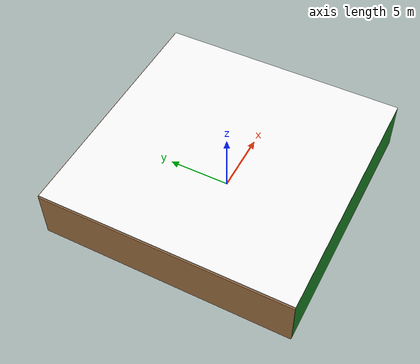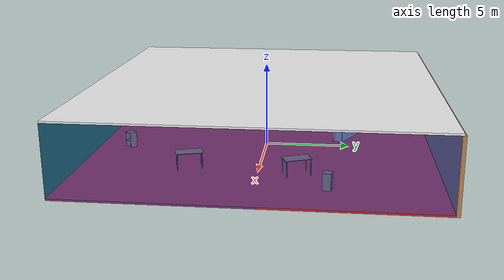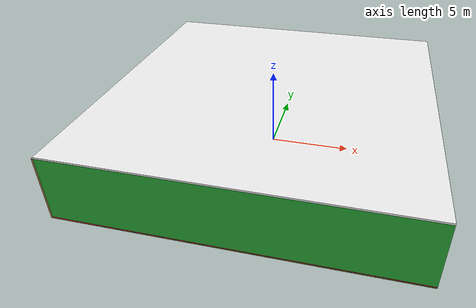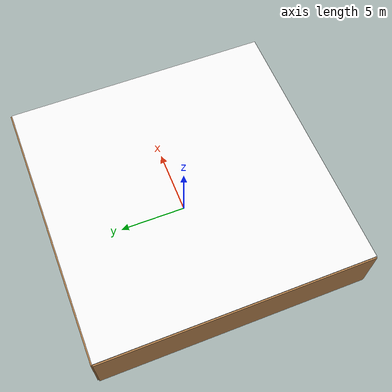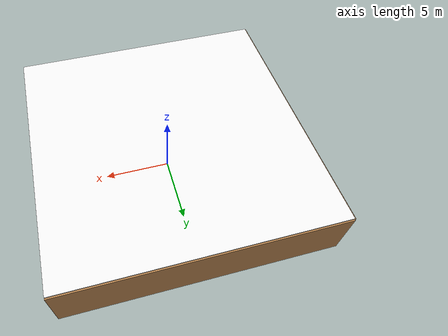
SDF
<sdf version="1.4">
 <world name="default">
  <physics type="ode">
   <max_step_size>0.001</max_step_size>
   <real_time_factor>1</real_time_factor>
   <real_time_update_rate>1000</real_time_update_rate>
   <gravity>0 0 -9.8</gravity>
  </physics>
  <scene><ambient>0.4 0.4 0.4 1</ambient><background>0.7 0.7 0.7 1</background><shadows>1</shadows></scene>
  <model name="Surrounding">
   <static>1</static>
   <link name="Ceiling">
    <collision name="Ceiling_Collision"><geometry><box><size>20 20 0.1</size></box></geometry></collision>
    <visual name="Ceiling_Visual">
     <geometry><box><size>20 20 0.1</size></box></geometry>
     <material>
      <script><uri>file://media/materials/scripts/gazebo.material</uri><name>Gazebo/WhiteGlow</name></script>
     </material>
    </visual>
    <pose>0 0 4.05 0 0 0</pose>
   </link>
   <link name="Wall_South">
    <collision name="Wall_South_Collision">
     <geometry><box><size>20 0 4</size></box></geometry>
     <pose>0 0 2 0 -0 0</pose>
    </collision>
    <visual name="Wall_South_Visual">
     <pose>0 0 2 0 -0 0</pose>
     <geometry><box><size>20 0 4</size></box></geometry>
     <material>
      <script><uri>file://media/materials/scripts/gazebo.material</uri><name>Gazebo/GreenGlow</name></script>
     </material>
    </visual>
    <velocity_decay><linear>0</linear><angular>0</angular></velocity_decay>
    <pose>0 -10 0 0 -0 0</pose>
   </link>
   <link name="Wall_East">
    <collision name="Wall_21_Collision">
     <geometry><box><size>20 0 4</size></box></geometry>
     <pose>0 0 2 0 -0 0</pose>
    </collision>
    <visual name="Wall_21_Visual">
     <pose>0 0 2 0 -0 0</pose>
     <geometry><box><size>20 0 4</size></box></geometry>
     <material>
      <script><uri>file://media/materials/scripts/gazebo.material</uri><name>Gazebo/BlueTransparent</name></script>
     </material>
    </visual>
    <velocity_decay><linear>0</linear><angular>0</angular></velocity_decay>
    <pose>10 0 0 0 -0 1.5708</pose>
   </link>
   <link name="Wall_North">
    <collision name="Wall_22_Collision">
     <geometry><box><size>20 0.2 4</size></box></geometry>
     <pose>0 0 2 0 -0 0</pose>
    </collision>
    <visual name="Wall_22_Visual">
     <pose>0 0 2 0 -0 0</pose>
     <geometry><box><size>20 0.2 4</size></box></geometry>
     <material>
      <script><uri>file://media/materials/scripts/gazebo.material</uri><name>Gazebo/Wood</name></script>
     </material>
    </visual>
    <velocity_decay><linear>0</linear><angular>0</angular></velocity_decay>
    <pose>0 10 0 0 -0 0</pose>
   </link>
   <link name="Wall_West">
    <collision name="Wall_23_Collision">
     <geometry><box><size>20 0.2 4</size></box></geometry>
     <pose>0 0 2 0 -0 0</pose>
    </collision>
    <visual name="Wall_23_Visual">
     <pose>0 0 2 0 -0 0</pose>
     <geometry><box><size>20 0.2 4</size></box></geometry>
     <material>
      <script><uri>file://media/materials/scripts/gazebo.material</uri><name>Gazebo/WoodFloor</name></script>
     </material>
    </visual>
    <velocity_decay><linear>0</linear><angular>0</angular></velocity_decay>
    <pose>-10 0 0 0 0 -1.5708</pose>
   </link>
   <link name="Ground_link">
    <collision name="collision">
     <pose>0 0 .05 0 -0 0</pose>
     <geometry><box><size>20 20 0.1</size></box></geometry>
    </collision>
    <visual name="visual">
     <pose>0 0 .05 0 -0 0</pose>
     <geometry><box><size>20 20 0.1</size></box></geometry>
     <material>
      <script><uri>file://media/materials/scripts/gazebo.material</uri><name>Gazebo/RedGlow</name></script>
     </material>
    </visual>
   </link>
   <static>1</static>
  </model>
  <spherical_coordinates>
   <surface_model>EARTH_WGS84</surface_model>
   <latitude_deg>0</latitude_deg>
   <longitude_deg>0</longitude_deg>
   <elevation>0</elevation>
   <heading_deg>0</heading_deg>
  </spherical_coordinates>
  <light name="lightball_0" type="diffuse">
   <diffuse>0.8 0.8 0.8 1</diffuse>
   <specular>0.2 0.2 0.2 1</specular>
   <attenuation>
    <range>100</range>
    <constant>0.7</constant>
    <linear>0.01</linear>
    <quadratic>0.001</quadratic>
   </attenuation>
   <direction>-0.5 0.1 -0.9</direction>
   <pose>-8.77182717998 -2.74867419326 3.81962610767 0 0 0</pose>
  </light>
  <light name="lightball_1" type="diffuse">
   <diffuse>0.8 0.8 0.8 1</diffuse>
   <specular>0.2 0.2 0.2 1</specular>
   <attenuation>
    <range>100</range>
    <constant>0.7</constant>
    <linear>0.01</linear>
    <quadratic>0.001</quadratic>
   </attenuation>
   <direction>-0.5 0.1 -0.9</direction>
   <pose>-3.32420001857 -5.41356669261 2.2943861197 0 0 0</pose>
  </light>
  <light name="lightball_2" type="diffuse">
   <diffuse>0.8 0.8 0.8 1</diffuse>
   <specular>0.2 0.2 0.2 1</specular>
   <attenuation>
    <range>100</range>
    <constant>0.7</constant>
    <linear>0.01</linear>
    <quadratic>0.001</quadratic>
   </attenuation>
   <direction>-0.5 0.1 -0.9</direction>
   <pose>3.80907272695 -1.65123087402 3.3178493106 0 0 0</pose>
  </light>
  <light name="lightball_3" type="diffuse">
   <diffuse>0.8 0.8 0.8 1</diffuse>
   <specular>0.2 0.2 0.2 1</specular>
   <attenuation>
    <range>100</range>
    <constant>0.7</constant>
    <linear>0.01</linear>
    <quadratic>0.001</quadratic>
   </attenuation>
   <direction>-0.5 0.1 -0.9</direction>
   <pose>6.0917404 -8.45361299288 1.70899794594 0 0 0</pose>
  </light>
  <light name="lightball_4" type="diffuse">
   <diffuse>0.8 0.8 0.8 1</diffuse>
   <specular>0.2 0.2 0.2 1</specular>
   <attenuation>
    <range>100</range>
    <constant>0.7</constant>
    <linear>0.01</linear>
    <quadratic>0.001</quadratic>
   </attenuation>
   <direction>-0.5 0.1 -0.9</direction>
   <pose>-3.14675008388 4.69675395896 2.50943394977 0 0 0</pose>
  </light>
  <light name="lightball_5" type="diffuse">
   <diffuse>0.8 0.8 0.8 1</diffuse>
   <specular>0.2 0.2 0.2 1</specular>
   <attenuation>
    <range>100</range>
    <constant>0.7</constant>
    <linear>0.01</linear>
    <quadratic>0.001</quadratic>
   </attenuation>
   <direction>-0.5 0.1 -0.9</direction>
   <pose>5.39192872176 1.14006610564 3.68481178673 0 0 0</pose>
  </light>
  <light name="lightball_6" type="diffuse">
   <diffuse>0.8 0.8 0.8 1</diffuse>
   <specular>0.2 0.2 0.2 1</specular>
   <attenuation>
    <range>100</range>
    <constant>0.7</constant>
    <linear>0.01</linear>
    <quadratic>0.001</quadratic>
   </attenuation>
   <direction>-0.5 0.1 -0.9</direction>
   <pose>-9.9659888508 8.26722791634 0.885588711275 0 0 0</pose>
  </light>
  <light name="lightball_7" type="diffuse">
   <diffuse>0.8 0.8 0.8 1</diffuse>
   <specular>0.2 0.2 0.2 1</specular>
   <attenuation>
    <range>100</range>
    <constant>0.7</constant>
    <linear>0.01</linear>
    <quadratic>0.001</quadratic>
   </attenuation>
   <direction>-0.5 0.1 -0.9</direction>
   <pose>1.05812467438 7.84221327047 3.79403193062 0 0 0</pose>
  </light>
  <light name="lightball_8" type="diffuse">
   <diffuse>0.8 0.8 0.8 1</diffuse>
   <specular>0.2 0.2 0.2 1</specular>
   <attenuation>
    <range>100</range>
    <constant>0.7</constant>
    <linear>0.01</linear>
    <quadratic>0.001</quadratic>
   </attenuation>
   <direction>-0.5 0.1 -0.9</direction>
   <pose>-4.85086912279 -9.27962995193 2.09118296358 0 0 0</pose>
  </light>
  <include><uri>model://cabinet</uri><pose>-5.66653434894 3.90260728757 0 0 0 2.78397076026</pose></include>
  <include>
   <uri>model://robocup_3Dsim_goal</uri>
   <pose>-1.57358591202 4.6141088583 0 0 0 1.08723926351</pose>
  </include>
  <include><uri>model://cabinet</uri><pose>1.60047295558 -8.10353830746 0 0 0 2.44254712532</pose></include>
  <include><uri>model://table</uri><pose>4.8219224075 -3.84885577022 0 0 0 1.86030571536</pose></include>
  <include><uri>model://table</uri><pose>5.30793150098 2.15534043101 0 0 0 1.95636692737</pose></include>
  <include><uri>model://cabinet</uri><pose>7.36014295637 3.85423979865 0 0 0 1.39769299154</pose></include>
 </world>
</sdf>

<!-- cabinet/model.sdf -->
<sdf version="1.5">
  <model name="cabinet">
    <static>true</static>
    <link name="cabinet_bottom_plate">
      <inertial>
        <pose>0 0 -1 0 0 0</pose>
        <inertia>
          <ixx>2.050000</ixx>
          <ixy>0</ixy>
          <ixz>0</ixz>
          <iyy>2.050000</iyy>
          <iyz>0</iyz>
          <izz>2.050000</izz>
        </inertia>
        <mass>25.000000</mass>
      </inertial>
      <collision name="cabinet_bottom_plate_geom">
        <pose>0 0 0.010000 0 0 0</pose>
        <geometry>
          <box>
            <size>0.450000 0.450000 0.020000</size>
          </box>
        </geometry>
      </collision>
      <visual name="cabinet_bottom_plate_geom_visual">
        <pose>0 0 0.010000 0 0 0</pose>
        <geometry>
          <box>
            <size>0.450000 0.450000 0.020000</size>
          </box>
        </geometry>
        <material>
          <script>
            <uri>model://media/materials/scripts/gazebo.material</uri>
            <name>Gazebo/Wood</name>
          </script>
        </material>
      </visual>
      <collision name="cabinet_bottom_plate_geom_cabinet_back_plate">
        <pose>0.235000 0 0.510000 0 0 0</pose>
        <geometry>
          <box>
            <size>0.020000 0.450000 1.020000</size>
          </box>
        </geometry>
      </collision>
      <visual name="cabinet_bottom_plate_geom_cabinet_back_plate_visual">
        <pose>0.235000 0 0.510000 0 0 0</pose>
        <geometry>
          <box>
            <size>0.020000 0.450000 1.020000</size>
          </box>
        </geometry>
        <material>
          <script>
            <uri>model://media/materials/scripts/gazebo.material</uri>
            <name>Gazebo/Wood</name>
          </script>
        </material>
      </visual>
      <collision name="cabinet_bottom_plate_geom_cabinet_left_plate">
        <pose>0 0.235000 0.510000 0 0 0</pose>
        <geometry>
          <box>
            <size>0.450000 0.020000 1.020000</size>
          </box>
        </geometry>
      </collision>
      <visual name="cabinet_bottom_plate_geom_cabinet_left_plate_visual">
        <pose>0 0.235000 0.510000 0 0 0</pose>
        <geometry>
          <box>
            <size>0.450000 0.020000 1.020000</size>
          </box>
        </geometry>
        <material>
          <script>
            <uri>model://media/materials/scripts/gazebo.material</uri>
            <name>Gazebo/Wood</name>
          </script>
        </material>
      </visual>
      <collision name="cabinet_bottom_plate_geom_cabinet_middle_plate">
        <pose>0 0 0.510000 0 0 0</pose>
        <geometry>
          <box>
            <size>0.450000 0.450000 0.020000</size>
          </box>
        </geometry>
      </collision>
      <visual name="cabinet_bottom_plate_geom_cabinet_middle_plate_visual">
        <pose>0 0 0.510000 0 0 0</pose>
        <geometry>
          <box>
            <size>0.450000 0.450000 0.020000</size>
          </box>
        </geometry>
        <material>
          <script>
            <uri>model://media/materials/scripts/gazebo.material</uri>
            <name>Gazebo/Wood</name>
          </script>
        </material>
      </visual>
      <collision name="cabinet_bottom_plate_geom_cabinet_right_plate">
        <pose>0 -0.235000 0.510000 0 0 0</pose>
        <geometry>
          <box>
            <size>0.450000 0.020000 1.020000</size>
          </box>
        </geometry>
      </collision>
      <visual name="cabinet_bottom_plate_geom_cabinet_right_plate_visual">
        <pose>0 -0.235000 0.510000 0 0 0</pose>
        <geometry>
          <box>
            <size>0.450000 0.020000 1.020000</size>
          </box>
        </geometry>
        <material>
          <script>
            <uri>model://media/materials/scripts/gazebo.material</uri>
            <name>Gazebo/Wood</name>
          </script>
        </material>
      </visual>
      <collision name="cabinet_bottom_plate_geom_cabinet_top_plate">
        <pose>0 0 1.010000 0 0 0</pose>
        <geometry>
          <box>
            <size>0.450000 0.450000 0.020000</size>
          </box>
        </geometry>
      </collision>
      <visual name="cabinet_bottom_plate_geom_cabinet_top_plate_visual">
        <pose>0 0 1.010000 0 0 0</pose>
        <geometry>
          <box>
            <size>0.450000 0.450000 0.020000</size>
          </box>
        </geometry>
        <material>
          <script>
            <uri>model://media/materials/scripts/gazebo.material</uri>
            <name>Gazebo/Wood</name>
          </script>
        </material>
      </visual>
    </link>
  </model>
</sdf>

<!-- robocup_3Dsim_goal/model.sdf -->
<sdf version="1.5">
  <model name="robocup_3d_goal">
    <static>true</static>
    <link name="left_post">
      <pose>0 1.05 0.45 0 0 0</pose>
      <collision name="collision">
        <geometry>
          <cylinder>
            <radius>0.05</radius>
            <length>0.9</length>
          </cylinder>
        </geometry>
      </collision>
      <visual name="visual">
        <geometry>
          <cylinder>
            <radius>0.05</radius>
            <length>0.9</length>
          </cylinder>
        </geometry>
        <material>
          <script>
            <uri>file://media/materials/scripts/gazebo.material</uri>
            <name>Gazebo/ZincYellow</name>
          </script>
        </material>
      </visual>
    </link>
    <link name="left_support_horiz_lower">
      <pose>0.30 1.05 0.01 0 0 0</pose>
      <collision name="collision">
        <geometry>
          <box>
            <size>0.50 0.02 0.02</size>
          </box>
        </geometry>
      </collision>
      <visual name="visual">
        <geometry>
          <box>
            <size>0.50 0.02 0.02</size>
          </box>
        </geometry>
        <material>
          <script>
            <uri>file://media/materials/scripts/gazebo.material</uri>
            <name>Gazebo/White</name>
          </script>
        </material>
      </visual>
    </link>
    <link name="left_support_horiz_upper">
      <pose>0.30 1.05 0.79 0 0 0</pose>
      <collision name="collision">
        <geometry>
          <box>
            <size>0.50 0.02 0.02</size>
          </box>
        </geometry>
      </collision>
      <visual name="visual">
        <geometry>
          <box>
            <size>0.50 0.02 0.02</size>
          </box>
        </geometry>
        <material>
          <script>
            <uri>file://media/materials/scripts/gazebo.material</uri>
            <name>Gazebo/White</name>
          </script>
        </material>
      </visual>
    </link>
    <link name="left_support_vertical">
      <pose>0.56 1.05 0.4 0 1.5708 0</pose>
      <collision name="collision">
        <geometry>
          <box>
            <size>0.80 0.02 0.02</size>
          </box>
        </geometry>
      </collision>
      <visual name="visual">
        <geometry>
          <box>
            <size>0.80 0.02 0.02</size>
          </box>
        </geometry>
        <material>
          <script>
            <uri>file://media/materials/scripts/gazebo.material</uri>
            <name>Gazebo/White</name>
          </script>
        </material>
      </visual>
    </link>
    <link name="right_support_horiz_lower">
      <pose>0.30 -1.05 0.01 0 0 0</pose>
      <collision name="collision">
        <geometry>
          <box>
            <size>0.50 0.02 0.02</size>
          </box>
        </geometry>
      </collision>
      <visual name="visual">
        <geometry>
          <box>
            <size>0.50 0.02 0.02</size>
          </box>
        </geometry>
        <material>
          <script>
            <uri>file://media/materials/scripts/gazebo.material</uri>
            <name>Gazebo/White</name>
          </script>
        </material>
      </visual>
    </link>
    <link name="right_support_horiz_upper">
      <pose>0.30 -1.05 0.79 0 0 0</pose>
      <collision name="collision">
        <geometry>
          <box>
            <size>0.50 0.02 0.02</size>
          </box>
        </geometry>
      </collision>
      <visual name="visual">
        <geometry>
          <box>
            <size>0.50 0.02 0.02</size>
          </box>
        </geometry>
        <material>
          <script>
            <uri>file://media/materials/scripts/gazebo.material</uri>
            <name>Gazebo/White</name>
          </script>
        </material>
      </visual>
    </link>
    <link name="right_support_vertical">
      <pose>0.56 -1.05 0.4 0 1.5708 0</pose>
      <collision name="collision">
        <geometry>
          <box>
            <size>0.80 0.02 0.02</size>
          </box>
        </geometry>
      </collision>
      <visual name="visual">
        <geometry>
          <box>
            <size>0.80 0.02 0.02</size>
          </box>
        </geometry>
        <material>
          <script>
            <uri>file://media/materials/scripts/gazebo.material</uri>
            <name>Gazebo/White</name>
          </script>
        </material>
      </visual>
    </link>
    <link name="center_support_horiz_lower">
      <pose>0.56 0 0.01 0 1.5708 0</pose>
      <collision name="collision">
        <geometry>
          <box>
            <size>0.02 2.08 0.02</size>
          </box>
        </geometry>
      </collision>
      <visual name="visual">
        <geometry>
          <box>
            <size>0.02 2.08 0.02</size>
          </box>
        </geometry>
        <material>
          <script>
            <uri>file://media/materials/scripts/gazebo.material</uri>
            <name>Gazebo/White</name>
          </script>
        </material>
      </visual>
    </link>
    <link name="center_support_horiz_upper">
      <pose>0.56 0 0.79 0 1.5708 0</pose>
      <collision name="collision">
        <geometry>
          <box>
            <size>0.02 2.08 0.02</size>
          </box>
        </geometry>
      </collision>
      <visual name="visual">
        <geometry>
          <box>
            <size>0.02 2.08 0.02</size>
          </box>
        </geometry>
        <material>
          <script>
            <uri>file://media/materials/scripts/gazebo.material</uri>
            <name>Gazebo/White</name>
          </script>
        </material>
      </visual>
    </link>
    <link name="right_post">
      <pose>0 -1.05 0.45 0 0 0</pose>
      <collision name="collision">
        <geometry>
          <cylinder>
            <radius>0.05</radius>
            <length>0.9</length>
          </cylinder>
        </geometry>
      </collision>
      <visual name="visual">
        <geometry>
          <cylinder>
            <radius>0.05</radius>
            <length>0.9</length>
          </cylinder>
        </geometry>
        <material>
          <script>
            <uri>file://media/materials/scripts/gazebo.material</uri>
            <name>Gazebo/ZincYellow</name>
          </script>
        </material>
      </visual>
    </link>
    <link name="crossbar">
      <pose>0 0 0.85 1.57 1.57 0</pose>
      <collision name="collision">
        <geometry>
          <cylinder>
            <radius>0.05</radius>
            <length>2.0</length>
          </cylinder>
        </geometry>
      </collision>
      <visual name="visual">
        <geometry>
          <cylinder>
            <radius>0.05</radius>
            <length>2.0</length>
          </cylinder>
        </geometry>
        <material>
          <script>
            <uri>file://media/materials/scripts/gazebo.material</uri>
            <name>Gazebo/ZincYellow</name>
          </script>
        </material>
      </visual>
    </link>
    <link name="center_net">
      <pose>0.56 0 0.40 0 0 0</pose>
      <collision name="collision">
        <geometry>
          <box>
            <size>0.01 2.1 0.80</size>
          </box>
        </geometry>
      </collision>
      <visual name="visual">
        <geometry>
          <box>
            <size>0.01 2.1 0.80</size>
          </box>
        </geometry>
        <material>
          <script>
            <uri>model://../model_source/models/robocup09_spl_field/materials/scripts/</uri>
            <uri>model://../model_source/models/robocup09_spl_field/materials/textures/</uri>
            <name>RoboCup/Net</name>
          </script>
        </material>
      </visual>
    </link>
    <link name="left_net">
      <pose>0.30 1.05 0.40 0 0 0</pose>
      <collision name="collision">
        <geometry>
          <box>
            <size>0.50 0.01 0.76</size>
          </box>
        </geometry>
      </collision>
      <visual name="visual">
        <geometry>
          <box>
            <size>0.50 0.01 0.76</size>
          </box>
        </geometry>
        <material>
          <script>
            <uri>model://../model_source/models/robocup09_spl_field/materials/scripts/</uri>
            <uri>model://../model_source/models/robocup09_spl_field/materials/textures/</uri>
            <name>RoboCup/Net</name>
          </script>
        </material>
      </visual>
    </link>
    <link name="right_net">
      <pose>0.30 -1.05 0.40 0 0 0</pose>
      <collision name="collision">
        <geometry>
          <box>
            <size>0.50 0.01 0.76</size>
          </box>
        </geometry>
      </collision>
      <visual name="visual">
        <geometry>
          <box>
            <size>0.50 0.01 0.76</size>
          </box>
        </geometry>
        <material>
          <script>
            <uri>model://../model_source/models/robocup09_spl_field/materials/scripts/</uri>
            <uri>model://../model_source/models/robocup09_spl_field/materials/textures/</uri>
            <name>RoboCup/Net</name>
          </script>
        </material>
      </visual>
    </link>
  </model>
</sdf>

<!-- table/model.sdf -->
<sdf version="1.5">
  <model name="table">
    <static>true</static>
    <link name="link">
      <collision name="surface">
        <pose>0 0 1.0 0 0 0</pose>
        <geometry>
          <box>
            <size>1.5 0.8 0.03</size>
          </box>
        </geometry>
        <surface>
          <friction>
            <ode>
              <mu>0.6</mu>
              <mu2>0.6</mu2>
            </ode>
          </friction>
        </surface>
      </collision>
      <visual name="visual1">
        <pose>0 0 1.0 0 0 0</pose>
        <geometry>
          <box>
            <size>1.5 0.8 0.03</size>
          </box>
        </geometry>
        <material>
          <script>
            <uri>model://media/materials/scripts/gazebo.material</uri>
            <name>Gazebo/Wood</name>
          </script>
        </material>
      </visual>
      <collision name="front_left_leg">
        <pose>0.68 0.38 0.5 0 0 0</pose>
        <geometry>
          <cylinder>
            <radius>0.02</radius>
            <length>1.0</length>
          </cylinder>
        </geometry>
      </collision>
      <visual name="front_left_leg">
        <pose>0.68 0.38 0.5 0 0 0</pose>
        <geometry>
          <cylinder>
            <radius>0.02</radius>
            <length>1.0</length>
          </cylinder>
        </geometry>
        <material>
          <script>
            <uri>model://media/materials/scripts/gazebo.material</uri>
            <name>Gazebo/Grey</name>
          </script>
        </material>
      </visual>
      <collision name="front_right_leg">
        <pose>0.68 -0.38 0.5 0 0 0</pose>
        <geometry>
          <cylinder>
            <radius>0.02</radius>
            <length>1.0</length>
          </cylinder>
        </geometry>
      </collision>
      <visual name="front_right_leg">
        <pose>0.68 -0.38 0.5 0 0 0</pose>
        <geometry>
          <cylinder>
            <radius>0.02</radius>
            <length>1.0</length>
          </cylinder>
        </geometry>
        <material>
          <script>
            <uri>model://media/materials/scripts/gazebo.material</uri>
            <name>Gazebo/Grey</name>
          </script>
        </material>
      </visual>
      <collision name="back_right_leg">
        <pose>-0.68 -0.38 0.5 0 0 0</pose>
        <geometry>
          <cylinder>
            <radius>0.02</radius>
            <length>1.0</length>
          </cylinder>
        </geometry>
      </collision>
      <visual name="back_right_leg">
        <pose>-0.68 -0.38 0.5 0 0 0</pose>
        <geometry>
          <cylinder>
            <radius>0.02</radius>
            <length>1.0</length>
          </cylinder>
        </geometry>
        <material>
          <script>
            <uri>model://media/materials/scripts/gazebo.material</uri>
            <name>Gazebo/Grey</name>
          </script>
        </material>
      </visual>
      <collision name="back_left_leg">
        <pose>-0.68 0.38 0.5 0 0 0</pose>
        <geometry>
          <cylinder>
            <radius>0.02</radius>
            <length>1.0</length>
          </cylinder>
        </geometry>
      </collision>
      <visual name="back_left_leg">
        <pose>-0.68 0.38 0.5 0 0 0</pose>
        <geometry>
          <cylinder>
            <radius>0.02</radius>
            <length>1.0</length>
          </cylinder>
        </geometry>
        <material>
          <script>
            <uri>model://media/materials/scripts/gazebo.material</uri>
            <name>Gazebo/Grey</name>
          </script>
        </material>
      </visual>
    </link>
  </model>
</sdf>
